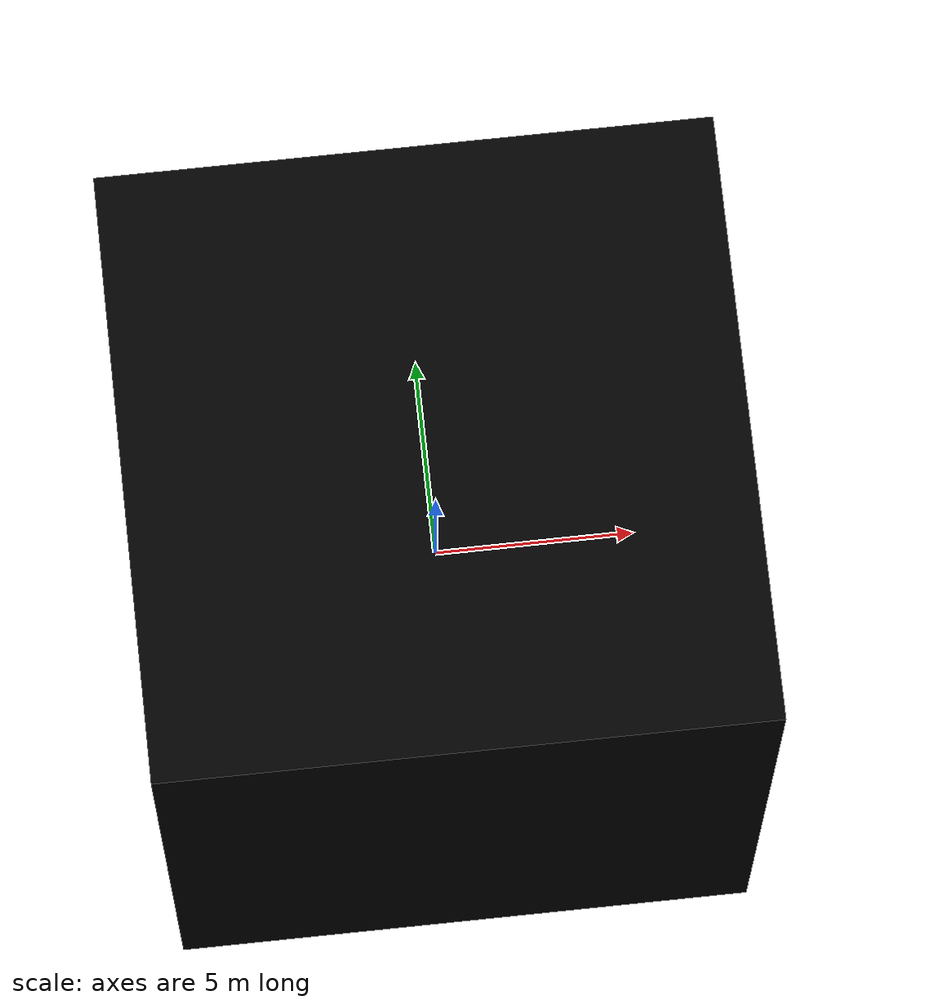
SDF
<?xml version="1.0" ?>
<sdf version="1.7">
  <model name="old_apartment_block">
    <static>true</static>
    <link name="link">
      <collision name="collision">
        <geometry>
          <box>
            <size>15 15 20</size>
          </box>
        </geometry>
      </collision>
      <visual name="block">
        <geometry>
          <box>
            <size>15 15 20</size>
          </box>
        </geometry>
        <material>
          <script>
            <uri>model://old_apartment_block/materials/scripts</uri>
            <uri>model://old_apartment_block/materials/textures</uri>
            <name>old_apartment_facade/Image</name>
          </script>
          <lightning>false</lightning>
          <ambient>1 1 1 1</ambient>
          <diffuse>0 0 0 1</diffuse>
          <specular>0 0 0 1</specular>
        </material>
      </visual>
    </link>
  </model>
</sdf>
